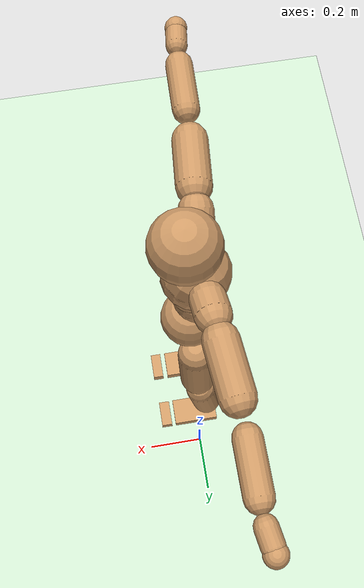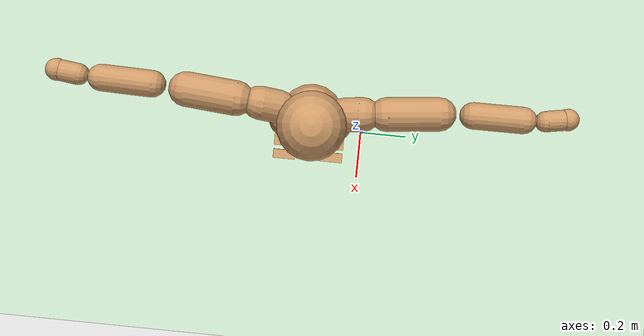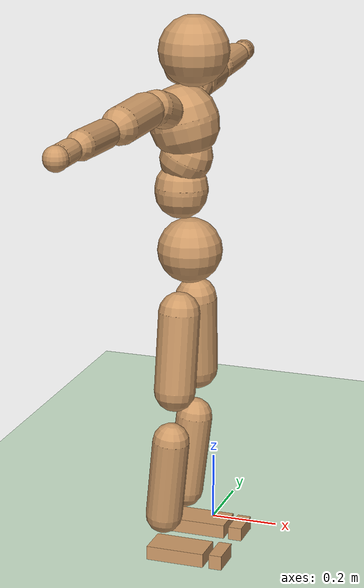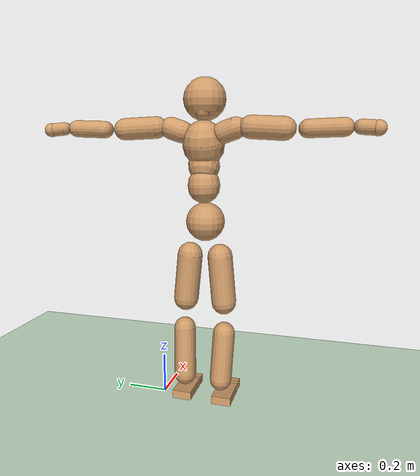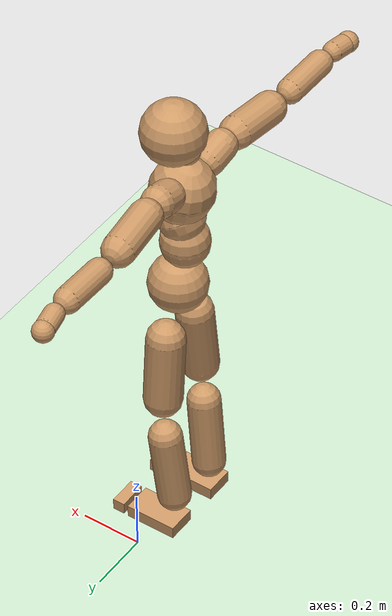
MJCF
<mujoco model="humanoid">
  <compiler coordinate="local" inertiafromgeom="true" angle="degree"/>
  <statistic extent="2" center="0 0 1"/>
  <option timestep="0.003"/>

  <custom>
        <!-- brax custom params -->
        <numeric data="2500" name="constraint_limit_stiffness"/>
        <numeric data="27000" name="constraint_stiffness"/>
        <numeric data="30" name="constraint_ang_damping"/>
        <numeric data="80" name="constraint_vel_damping"/>
        <numeric data="-0.05" name="ang_damping"/>
        <numeric data="0.5" name="joint_scale_pos"/>
        <numeric data="0.1" name="joint_scale_ang"/>
        <numeric data="0" name="spring_mass_scale"/>
        <numeric data="1" name="spring_inertia_scale"/>
        <numeric data="20" name="matrix_inv_iterations"/>
        <numeric data="15" name="solver_maxls"/>
    </custom>

  <default>
    <motor ctrlrange="-.4 .4" ctrllimited="true"/>
    <geom condim="3" material="geom" friction="1.0 0.05 0.05" solimp=".9 .99 .003" solref=".015 1" density="1500"/>
    <joint type="hinge" damping="6" stiffness="10" armature=".007" limited="true"/>
    <site size=".04" group="3"/>
    <default class="force-torque">
      <site type="box" size=".01 .01 .02" rgba="1 0 0 1"/>
    </default>
    <default class="touch">
      <site type="capsule" rgba="0 0 1 .3"/>
    </default>
  </default>
  <asset>
    <texture type="skybox" builtin="gradient" rgb1=".4 .5 .6" rgb2="0 0 0" width="100" height="100"/>
    <texture builtin="flat" height="1278" mark="cross" markrgb="1 1 1" name="texgeom" random="0.01" rgb1="0.8 0.6 0.4" rgb2="0.8 0.6 0.4" type="cube" width="127"/>
    <texture builtin="checker" height="100" name="texplane" rgb1="0 0 0" rgb2="0.8 0.8 0.8" type="2d" width="100"/>
    <material name="MatPlane" reflectance="0.5" shininess="1" specular="1" texrepeat="60 60" texture="texplane"/>
    <material name="geom" texture="texgeom" texuniform="true"/>
  </asset>
  <worldbody>
    <light cutoff="100" diffuse="1 1 1" dir="-0 0 -1.3" directional="true" exponent="1" pos="0 0 1.3" specular=".1 .1 .1"/>
    <geom conaffinity="1" condim="3" name="floor" pos="0 0 0" rgba="0.8 0.9 0.8 1" size="100 100 .2" type="plane" material="MatPlane"/>
    <body name="Pelvis" pos="-0.0018 -0.2233 0.9205">
      <freejoint name="Pelvis"/>
      <geom type="sphere" size="0.0942" pos="0.0000 0.0000 0.0000"/>
      <body name="L_Hip" pos="-0.0068 0.0695 -0.0914">
        <joint name="L_Hip_z_transl" type="slide" pos="0 0 0" axis="0 0 1" range="-90.0000 90.0000" stiffness="0" damping="10000"/>

        <joint name="L_Hip_x" type="hinge" pos="0 0 0" axis="1 0 0" armature="0.02" range="-90.0000 90.0000" stiffness="100"/>
        <joint name="L_Hip_y" type="hinge" pos="0 0 0" axis="0 1 0" armature="0.02" range="-90.0000 90.0000" stiffness="100"/>
        <joint name="L_Hip_z" type="hinge" pos="0 0 0" axis="0 0 1" armature="0.02" range="-90.0000 90.0000" stiffness="100"/>
        <geom type="capsule" fromto="-0.0009 0.0069 -0.0750 -0.0036 0.0274 -0.3002" size="0.0615"/>
        <body name="L_Knee" pos="-0.0045 0.0343 -0.3752">
          <joint name="L_Knee_z_transl" type="slide" pos="0 0 0" axis="0 0 1" range="-90.0000 90.0000" stiffness="0" damping="10000"/>

          <joint name="L_Knee_x" type="hinge" pos="0 0 0" axis="1 0 0" armature="0.02" range="-5.6250 5.6250"/>
          <joint name="L_Knee_y" type="hinge" pos="0 0 0" axis="0 1 0" armature="0.02" range="0.0000 180.0000"/>
          <joint name="L_Knee_z" type="hinge" pos="0 0 0" axis="0 0 1" armature="0.02" range="-5.6250 5.6250"/>
          <geom type="capsule" fromto="-0.0087 -0.0027 -0.0796 -0.0350 -0.0109 -0.3184" size="0.0541"/>
          <body name="L_Ankle" pos="-0.0437 -0.0136 -0.398">
            <joint name="L_Ankle_z_transl" type="slide" pos="0 0 0" axis="0 0 1" range="-90.0000 90.0000" stiffness="0" damping="10000"/>

            <joint name="L_Ankle_x" type="hinge" pos="0 0 0" axis="1 0 0" armature="0.02" range="-45.0000 45.0000"/>
            <joint name="L_Ankle_y" type="hinge" pos="0 0 0" axis="0 1 0" armature="0.02" range="-90.0000 90.0000"/>
            <joint name="L_Ankle_z" type="hinge" pos="0 0 0" axis="0 0 1" armature="0.02" range="-45.0000 45.0000"/>
            <geom type="box" pos="0.0596 0.0132 -0.0279" size="0.085 0.0483 0.0208" quat="1.0000 0.0000 0.0000 0.0000"/>
            <body name="L_Toe" pos="0.1193 0.0264 -0.0558">
              <joint name="L_Toe_x_transl" type="slide" pos="0 0 0" axis="1 0 0" range="-90.0000 90.0000" stiffness="0" damping="10000"/>

              <joint name="L_Toe_x" type="hinge" pos="0 0 0" axis="1 0 0" armature="0.02" range="-180.0000 180.0000"/>
              <joint name="L_Toe_y" type="hinge" pos="0 0 0" axis="0 1 0" armature="0.02" range="-180.0000 180.0000"/>
              <joint name="L_Toe_z" type="hinge" pos="0 0 0" axis="0 0 1" armature="0.02" range="-180.0000 180.0000"/>
              <geom type="box" pos="0.0606 -0.0132 0.0270" size="0.0202 0.0478 0.02" quat="1.0000 0.0000 0.0000 0.0000"/>
            </body>
          </body>
        </body>
      </body>
      <body name="R_Hip" pos="-0.0043 -0.0677 -0.0905">
        <joint name="R_Hip_z_transl" type="slide" pos="0 0 0" axis="0 0 1" range="-90.0000 90.0000" stiffness="0" damping="10000"/>

        <joint name="R_Hip_x" type="hinge" pos="0 0 0" axis="1 0 0" armature="0.02" range="-90.0000 90.0000" stiffness="100"/>
        <joint name="R_Hip_y" type="hinge" pos="0 0 0" axis="0 1 0" armature="0.02" range="-90.0000 90.0000" stiffness="100"/>
        <joint name="R_Hip_z" type="hinge" pos="0 0 0" axis="0 0 1" armature="0.02" range="-90.0000 90.0000" stiffness="100"/>
        <geom type="capsule" fromto="-0.0018 -0.0077 -0.0765 -0.0071 -0.0306 -0.3061" size="0.0606"/>
        <body name="R_Knee" pos="-0.0089 -0.0383 -0.3826">
          <joint name="R_Knee_z_transl" type="slide" pos="0 0 0" axis="0 0 1" range="-90.0000 90.0000" stiffness="0" damping="10000"/>

          <joint name="R_Knee_x" type="hinge" pos="0 0 0" axis="1 0 0" armature="0.02" range="-5.6250 5.6250"/>
          <joint name="R_Knee_y" type="hinge" pos="0 0 0" axis="0 1 0" armature="0.02" range="0.0000 180.0000"/>
          <joint name="R_Knee_z" type="hinge" pos="0 0 0" axis="0 0 1" armature="0.02" range="-5.6250 5.6250"/>
          <geom type="capsule" fromto="-0.0085 0.0032 -0.0797 -0.0338 0.0126 -0.3187" size="0.0541"/>
          <body name="R_Ankle" pos="-0.0423 0.0158 -0.3984">
            <joint name="R_Ankle_z_transl" type="slide" pos="0 0 0" axis="0 0 1" range="-90.0000 90.0000" stiffness="0" damping="10000"/>

            <joint name="R_Ankle_x" type="hinge" pos="0 0 0" axis="1 0 0" armature="0.02" range="-45.0000 45.0000"/>
            <joint name="R_Ankle_y" type="hinge" pos="0 0 0" axis="0 1 0" armature="0.02" range="-90.0000 90.0000"/>
            <joint name="R_Ankle_z" type="hinge" pos="0 0 0" axis="0 0 1" armature="0.02" range="-45.0000 45.0000"/>
            <geom type="box" pos="0.0617 -0.0127 -0.0241" size="0.0865 0.0483 0.0208" quat="1.0000 0.0000 0.0000 0.0000"/>
            <body name="R_Toe" pos="0.1233 -0.0254 -0.0481">
              <joint name="R_Toe_x_transl" type="slide" pos="0 0 0" axis="1 0 0" range="-90.0000 90.0000" stiffness="0" damping="10000"/>

              <joint name="R_Toe_x" type="hinge" pos="0 0 0" axis="1 0 0" armature="0.02" range="-180.0000 180.0000"/>
              <joint name="R_Toe_y" type="hinge" pos="0 0 0" axis="0 1 0" armature="0.02" range="-180.0000 180.0000"/>
              <joint name="R_Toe_z" type="hinge" pos="0 0 0" axis="0 0 1" armature="0.02" range="-180.0000 180.0000"/>
              <geom type="box" pos="0.0627 0.0127 0.0249" size="0.0195 0.0479 0.0216" quat="1.0000 0.0000 0.0000 0.0000"/>
            </body>
          </body>
        </body>
      </body>
      <body name="Torso" pos="-0.0267 -0.0025 0.109">
        <camera name="track" mode="trackcom" pos="0 -4 0" xyaxes="1 0 0 0 0 1"/>
        <joint name="Torso_z_transl" type="slide" pos="0 0 0" axis="0 0 1" range="-90.0000 90.0000" stiffness="0" damping="10000"/>

        <joint name="Torso_x" type="hinge" pos="0 0 0" axis="1 0 0" armature="0.02" range="-60.0000 60.0000" damping="10" stiffness="200"/>
        <joint name="Torso_y" type="hinge" pos="0 0 0" axis="0 1 0" armature="0.02" range="-60.0000 60.0000" damping="10" stiffness="200"/>
        <joint name="Torso_z" type="hinge" pos="0 0 0" axis="0 0 1" armature="0.02" range="-60.0000 60.0000" damping="10" stiffness="200"/>
        <geom type="capsule" fromto="0.0005 0.0025 0.0608 0.0006 0.0030 0.0743" size="0.0769"/>
        <body name="Spine" pos="0.0011 0.0055 0.1352">
          <joint name="Spine_z_transl" type="slide" pos="0 0 0" axis="0 0 1" range="-90.0000 90.0000" stiffness="0" damping="10000"/>

          <joint name="Spine_x" type="hinge" pos="0 0 0" axis="1 0 0" armature="0.02" range="-60.0000 60.0000"/>
          <joint name="Spine_y" type="hinge" pos="0 0 0" axis="0 1 0" armature="0.02" range="-60.0000 60.0000"/>
          <joint name="Spine_z" type="hinge" pos="0 0 0" axis="0 0 1" armature="0.02" range="-60.0000 60.0000"/>
          <geom type="capsule" fromto="0.0114 0.0007 0.0238 0.0140 0.0008 0.0291" size="0.0755"/>
          <body name="Chest" pos="0.0254 0.0015 0.0529">
            <joint name="Chest_z_transl" type="slide" pos="0 0 0" axis="0 0 1" range="-90.0000 90.0000" stiffness="0" damping="10000"/>

            <joint name="Chest_x" type="hinge" pos="0 0 0" axis="1 0 0" armature="0.02" range="-60.0000 60.0000"/>
            <joint name="Chest_y" type="hinge" pos="0 0 0" axis="0 1 0" armature="0.02" range="-60.0000 60.0000"/>
            <joint name="Chest_z" type="hinge" pos="0 0 0" axis="0 0 1" armature="0.02" range="-60.0000 60.0000"/>
            <geom type="capsule" fromto="-0.0173 -0.0009 0.0682 -0.0212 -0.0010 0.0833" size="0.1002"/>
            <body name="Neck" pos="-0.0429 -0.0028 0.2139">
              <joint name="Neck_z_transl" type="slide" pos="0 0 0" axis="0 0 1" range="-90.0000 90.0000" stiffness="0" damping="10000"/>

              <joint name="Neck_x" type="hinge" pos="0 0 0" axis="1 0 0" armature="0.02" range="-5.6250 5.6250"/>
              <joint name="Neck_y" type="hinge" pos="0 0 0" axis="0 1 0" armature="0.02" range="-90.0000 90.0000"/>
              <joint name="Neck_z" type="hinge" pos="0 0 0" axis="0 0 1" armature="0.02" range="-90.0000 90.0000"/>
              <geom type="capsule" fromto="0.0103 0.0010 0.0130 0.0411 0.0041 0.0520" size="0.0436"/>
              <body name="Head" pos="0.0513 0.0052 0.065">
                <joint name="Head_z_transl" type="slide" pos="0 0 0" axis="0 0 1" range="-90.0000 90.0000" stiffness="0" damping="10000"/>

                <joint name="Head_x" type="hinge" pos="0 0 0" axis="1 0 0" armature="0.02" range="-5.6250 5.6250"/>
                <joint name="Head_y" type="hinge" pos="0 0 0" axis="0 1 0" armature="0.02" range="-90.0000 90.0000"/>
                <joint name="Head_z" type="hinge" pos="0 0 0" axis="0 0 1" armature="0.02" range="-90.0000 90.0000"/>
                <geom type="sphere" size="0.1011" pos="0.0000 0.0000 0.0000"/>
              </body>
            </body>
            <body name="L_Thorax" pos="-0.0341 0.0788 0.1217">
              <joint name="L_Thorax_y_transl" type="slide" pos="0 0 0" axis="0 1 0" range="-90.0000 90.0000" stiffness="0" damping="10000"/>

              <joint name="L_Thorax_x" type="hinge" pos="0 0 0" axis="1 0 0" armature="0.02" range="-5.6250 5.6250"/>
              <joint name="L_Thorax_y" type="hinge" pos="0 0 0" axis="0 1 0" armature="0.02" range="-5.6250 5.6250"/>
              <joint name="L_Thorax_z" type="hinge" pos="0 0 0" axis="0 0 1" armature="0.02" range="-5.6250 5.6250"/>
              <geom type="capsule" fromto="-0.0018 0.0182 0.0061 -0.0071 0.0728 0.0244" size="0.0521"/>
              <body name="L_Shoulder" pos="-0.0089 0.091 0.0305">
                <joint name="L_Shoulder_y_transl" type="slide" pos="0 0 0" axis="0 1 0" range="-90.0000 90.0000" stiffness="0" damping="10000"/>

                <joint name="L_Shoulder_x" type="hinge" pos="0 0 0" axis="1 0 0" armature="0.02" range="-720.0000 720.0000"/>
                <joint name="L_Shoulder_y" type="hinge" pos="0 0 0" axis="0 1 0" armature="0.02" range="-720.0000 720.0000"/>
                <joint name="L_Shoulder_z" type="hinge" pos="0 0 0" axis="0 0 1" armature="0.02" range="-720.0000 720.0000"/>
                <geom type="capsule" fromto="-0.0055 0.0519 -0.0026 -0.0220 0.2077 -0.0102" size="0.0517"/>
                <body name="L_Elbow" pos="-0.0275 0.2596 -0.0128">
                  <joint name="L_Elbow_y_transl" type="slide" pos="0 0 0" axis="0 1 0" range="-90.0000 90.0000" stiffness="0" damping="10000"/>

                  <joint name="L_Elbow_x" type="hinge" pos="0 0 0" axis="1 0 0" armature="0.02" range="-5.6250 5.6250"/>
                  <joint name="L_Elbow_y" type="hinge" pos="0 0 0" axis="0 1 0" armature="0.02" range="-5.6250 5.6250"/>
                  <joint name="L_Elbow_z" type="hinge" pos="0 0 0" axis="0 0 1" armature="0.02" range="-180.0000 0.0000"/>
                  <geom type="capsule" fromto="-0.0002 0.0498 0.0018 -0.0009 0.1994 0.0072" size="0.0405"/>
                  <body name="L_Wrist" pos="-0.0012 0.2492 0.009">
                    <joint name="L_Wrist_y_transl" type="slide" pos="0 0 0" axis="0 1 0" range="-90.0000 90.0000" stiffness="0" damping="10000"/>

                    <joint name="L_Wrist_x" type="hinge" pos="0 0 0" axis="1 0 0" armature="0.02" range="-180.0000 180.0000"/>
                    <joint name="L_Wrist_y" type="hinge" pos="0 0 0" axis="0 1 0" armature="0.02" range="-180.0000 180.0000"/>
                    <joint name="L_Wrist_z" type="hinge" pos="0 0 0" axis="0 0 1" armature="0.02" range="-180.0000 180.0000"/>
                    <geom type="capsule" fromto="-0.0030 0.0168 -0.0016 -0.0120 0.0672 -0.0065" size="0.0318"/>
                    <body name="L_Hand" pos="-0.0149 0.084 -0.0082">
                      <joint name="L_Hand_y_transl" type="slide" pos="0 0 0" axis="0 1 0" range="-90.0000 90.0000" stiffness="0" damping="10000"/>

                      <joint name="L_Hand_x" type="hinge" pos="0 0 0" axis="1 0 0" armature="0.02" range="-180.0000 180.0000"/>
                      <joint name="L_Hand_y" type="hinge" pos="0 0 0" axis="0 1 0" armature="0.02" range="-180.0000 180.0000"/>
                      <joint name="L_Hand_z" type="hinge" pos="0 0 0" axis="0 0 1" armature="0.02" range="-180.0000 180.0000"/>
                      <geom type="sphere" size="0.0337" pos="0.0000 0.0000 0.0000"/>
                    </body>
                  </body>
                </body>
              </body>
            </body>
            <body name="R_Thorax" pos="-0.0386 -0.0818 0.1188">
              <joint name="R_Thorax_y_transl" type="slide" pos="0 0 0" axis="0 1 0" range="-90.0000 90.0000" stiffness="0" damping="10000"/>

              <joint name="R_Thorax_x" type="hinge" pos="0 0 0" axis="1 0 0" armature="0.02" range="-5.6250 5.6250"/>
              <joint name="R_Thorax_y" type="hinge" pos="0 0 0" axis="0 1 0" armature="0.02" range="-5.6250 5.6250"/>
              <joint name="R_Thorax_z" type="hinge" pos="0 0 0" axis="0 0 1" armature="0.02" range="-5.6250 5.6250"/>
              <geom type="capsule" fromto="-0.0018 -0.0192 0.0065 -0.0073 -0.0768 0.0260" size="0.0511"/>
              <body name="R_Shoulder" pos="-0.0091 -0.096 0.0326">
                <joint name="R_Shoulder_y_transl" type="slide" pos="0 0 0" axis="0 1 0" range="-90.0000 90.0000" stiffness="0" damping="10000"/>

                <joint name="R_Shoulder_x" type="hinge" pos="0 0 0" axis="1 0 0" armature="0.02" range="-720.0000 720.0000"/>
                <joint name="R_Shoulder_y" type="hinge" pos="0 0 0" axis="0 1 0" armature="0.02" range="-720.0000 720.0000"/>
                <joint name="R_Shoulder_z" type="hinge" pos="0 0 0" axis="0 0 1" armature="0.02" range="-720.0000 720.0000"/>
                <geom type="capsule" fromto="-0.0043 -0.0507 -0.0027 -0.0171 -0.2030 -0.0107" size="0.0531"/>
                <body name="R_Elbow" pos="-0.0214 -0.2537 -0.0133">
                  <joint name="R_Elbow_y_transl" type="slide" pos="0 0 0" axis="0 1 0" range="-90.0000 90.0000" stiffness="0" damping="10000"/>

                  <joint name="R_Elbow_x" type="hinge" pos="0 0 0" axis="1 0 0" armature="0.02" range="-5.6250 5.6250"/>
                  <joint name="R_Elbow_y" type="hinge" pos="0 0 0" axis="0 1 0" armature="0.02" range="-5.6250 5.6250"/>
                  <joint name="R_Elbow_z" type="hinge" pos="0 0 0" axis="0 0 1" armature="0.02" range="0.0000 180.0000"/>
                  <geom type="capsule" fromto="-0.0011 -0.0511 0.0016 -0.0044 -0.2042 0.0062" size="0.0408"/>
                  <body name="R_Wrist" pos="-0.0056 -0.2553 0.0078">
                    <joint name="R_Wrist_y_transl" type="slide" pos="0 0 0" axis="0 1 0" range="-90.0000 90.0000" stiffness="0" damping="10000"/>

                    <joint name="R_Wrist_x" type="hinge" pos="0 0 0" axis="1 0 0" armature="0.02" range="-180.0000 180.0000"/>
                    <joint name="R_Wrist_y" type="hinge" pos="0 0 0" axis="0 1 0" armature="0.02" range="-180.0000 180.0000"/>
                    <joint name="R_Wrist_z" type="hinge" pos="0 0 0" axis="0 0 1" armature="0.02" range="-180.0000 180.0000"/>
                    <geom type="capsule" fromto="-0.0021 -0.0169 -0.0012 -0.0083 -0.0677 -0.0049" size="0.0326"/>
                    <body name="R_Hand" pos="-0.0103 -0.0846 -0.0061">
                      <joint name="R_Hand_y_transl" type="slide" pos="0 0 0" axis="0 1 0" range="-90.0000 90.0000" stiffness="0" damping="10000"/>

                      <joint name="R_Hand_x" type="hinge" pos="0 0 0" axis="1 0 0" armature="0.02" range="-180.0000 180.0000"/>
                      <joint name="R_Hand_y" type="hinge" pos="0 0 0" axis="0 1 0" armature="0.02" range="-180.0000 180.0000"/>
                      <joint name="R_Hand_z" type="hinge" pos="0 0 0" axis="0 0 1" armature="0.02" range="-180.0000 180.0000"/>
                      <geom type="sphere" size="0.0340" pos="0.0000 0.0000 0.0000"/>
                    </body>
                  </body>
                </body>
              </body>
            </body>
          </body>
        </body>
      </body>
    </body>
  </worldbody>
  <actuator>
    <motor name="L_Hip_x" joint="L_Hip_x" gear="500"/>
    <motor name="L_Hip_y" joint="L_Hip_y" gear="500"/>
    <motor name="L_Hip_z" joint="L_Hip_z" gear="500"/>
    <motor name="L_Knee_x" joint="L_Knee_x" gear="500"/>
    <motor name="L_Knee_y" joint="L_Knee_y" gear="500"/>
    <motor name="L_Knee_z" joint="L_Knee_z" gear="500"/>
    <motor name="L_Ankle_x" joint="L_Ankle_x" gear="500"/>
    <motor name="L_Ankle_y" joint="L_Ankle_y" gear="500"/>
    <motor name="L_Ankle_z" joint="L_Ankle_z" gear="500"/>
    <motor name="L_Toe_x" joint="L_Toe_x" gear="500"/>
    <motor name="L_Toe_y" joint="L_Toe_y" gear="500"/>
    <motor name="L_Toe_z" joint="L_Toe_z" gear="500"/>
    <motor name="R_Hip_x" joint="R_Hip_x" gear="500"/>
    <motor name="R_Hip_y" joint="R_Hip_y" gear="500"/>
    <motor name="R_Hip_z" joint="R_Hip_z" gear="500"/>
    <motor name="R_Knee_x" joint="R_Knee_x" gear="500"/>
    <motor name="R_Knee_y" joint="R_Knee_y" gear="500"/>
    <motor name="R_Knee_z" joint="R_Knee_z" gear="500"/>
    <motor name="R_Ankle_x" joint="R_Ankle_x" gear="500"/>
    <motor name="R_Ankle_y" joint="R_Ankle_y" gear="500"/>
    <motor name="R_Ankle_z" joint="R_Ankle_z" gear="500"/>
    <motor name="R_Toe_x" joint="R_Toe_x" gear="500"/>
    <motor name="R_Toe_y" joint="R_Toe_y" gear="500"/>
    <motor name="R_Toe_z" joint="R_Toe_z" gear="500"/>
    <motor name="Torso_x" joint="Torso_x" gear="500"/>
    <motor name="Torso_y" joint="Torso_y" gear="500"/>
    <motor name="Torso_z" joint="Torso_z" gear="500"/>
    <motor name="Spine_x" joint="Spine_x" gear="500"/>
    <motor name="Spine_y" joint="Spine_y" gear="500"/>
    <motor name="Spine_z" joint="Spine_z" gear="500"/>
    <motor name="Chest_x" joint="Chest_x" gear="500"/>
    <motor name="Chest_y" joint="Chest_y" gear="500"/>
    <motor name="Chest_z" joint="Chest_z" gear="500"/>
    <motor name="Neck_x" joint="Neck_x" gear="500"/>
    <motor name="Neck_y" joint="Neck_y" gear="500"/>
    <motor name="Neck_z" joint="Neck_z" gear="500"/>
    <motor name="Head_x" joint="Head_x" gear="500"/>
    <motor name="Head_y" joint="Head_y" gear="500"/>
    <motor name="Head_z" joint="Head_z" gear="500"/>
    <motor name="L_Thorax_x" joint="L_Thorax_x" gear="500"/>
    <motor name="L_Thorax_y" joint="L_Thorax_y" gear="500"/>
    <motor name="L_Thorax_z" joint="L_Thorax_z" gear="500"/>
    <motor name="L_Shoulder_x" joint="L_Shoulder_x" gear="500"/>
    <motor name="L_Shoulder_y" joint="L_Shoulder_y" gear="500"/>
    <motor name="L_Shoulder_z" joint="L_Shoulder_z" gear="500"/>
    <motor name="L_Elbow_x" joint="L_Elbow_x" gear="500"/>
    <motor name="L_Elbow_y" joint="L_Elbow_y" gear="500"/>
    <motor name="L_Elbow_z" joint="L_Elbow_z" gear="500"/>
    <motor name="L_Wrist_x" joint="L_Wrist_x" gear="500"/>
    <motor name="L_Wrist_y" joint="L_Wrist_y" gear="500"/>
    <motor name="L_Wrist_z" joint="L_Wrist_z" gear="500"/>
    <motor name="L_Hand_x" joint="L_Hand_x" gear="500"/>
    <motor name="L_Hand_y" joint="L_Hand_y" gear="500"/>
    <motor name="L_Hand_z" joint="L_Hand_z" gear="500"/>
    <motor name="R_Thorax_x" joint="R_Thorax_x" gear="500"/>
    <motor name="R_Thorax_y" joint="R_Thorax_y" gear="500"/>
    <motor name="R_Thorax_z" joint="R_Thorax_z" gear="500"/>
    <motor name="R_Shoulder_x" joint="R_Shoulder_x" gear="500"/>
    <motor name="R_Shoulder_y" joint="R_Shoulder_y" gear="500"/>
    <motor name="R_Shoulder_z" joint="R_Shoulder_z" gear="500"/>
    <motor name="R_Elbow_x" joint="R_Elbow_x" gear="500"/>
    <motor name="R_Elbow_y" joint="R_Elbow_y" gear="500"/>
    <motor name="R_Elbow_z" joint="R_Elbow_z" gear="500"/>
    <motor name="R_Wrist_x" joint="R_Wrist_x" gear="500"/>
    <motor name="R_Wrist_y" joint="R_Wrist_y" gear="500"/>
    <motor name="R_Wrist_z" joint="R_Wrist_z" gear="500"/>
    <motor name="R_Hand_x" joint="R_Hand_x" gear="500"/>
    <motor name="R_Hand_y" joint="R_Hand_y" gear="500"/>
    <motor name="R_Hand_z" joint="R_Hand_z" gear="500"/>

  </actuator>
  <contact/>
  <size njmax="700" nconmax="700"/>
</mujoco>
